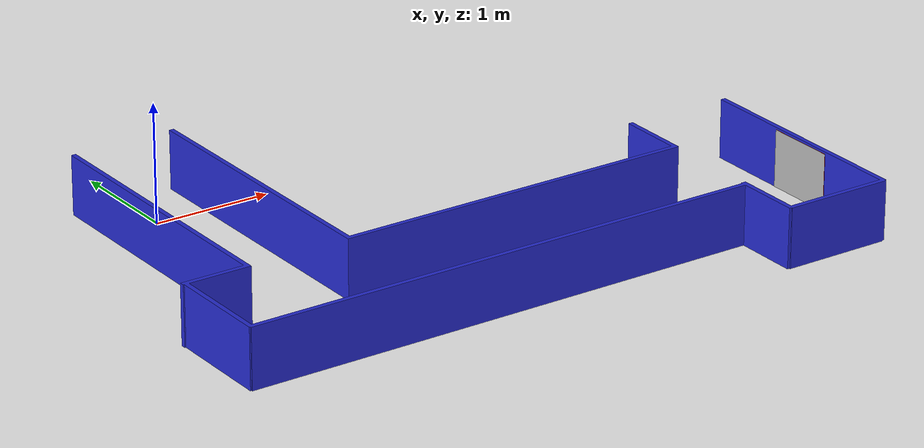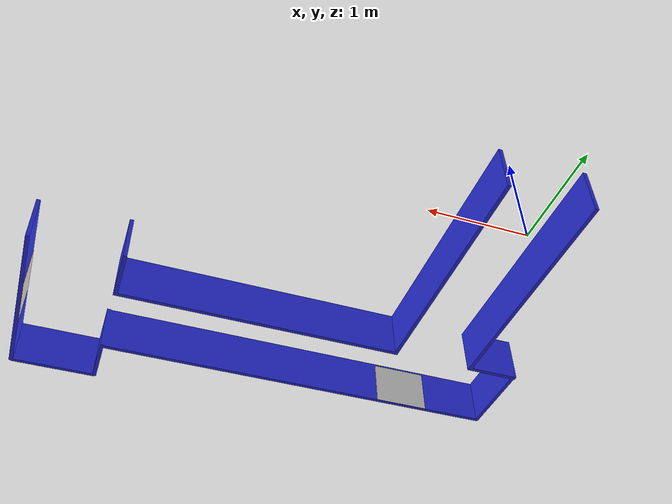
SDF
<?xml version='1.0'?>
<sdf version='1.7'>
  <model name='qr_maze'>
    <link name='link_0'>
      <inertial>
        <mass>1</mass>
        <inertia>
          <ixx>0.166667</ixx>
          <ixy>0</ixy>
          <ixz>0</ixz>
          <iyy>0.166667</iyy>
          <iyz>0</iyz>
          <izz>0.166667</izz>
        </inertia>
        <pose>0 0 0 0 -0 0</pose>
      </inertial>
      <pose>-0.003152 0.004438 -0.000445 0 -0 0</pose>
      <gravity>1</gravity>
      <self_collide>0</self_collide>
      <kinematic>0</kinematic>
      <enable_wind>0</enable_wind>
      <visual name='visual'>
        <pose>0 0 0 0 -0 0</pose>
        <geometry>
          <mesh>
            <uri>/home/luqman/ros2_ws/src/ROS2-Raspberry-PI-Computer-Vision-Robot/vision_bot/meshes/qr_maze.dae</uri>
            <scale>1 1 1</scale>
          </mesh>
        </geometry>

        <transparency>0</transparency>
        <cast_shadows>1</cast_shadows>
      </visual>
      <collision name='collision'>
        <laser_retro>0</laser_retro>
        <max_contacts>10</max_contacts>
        <pose>0 0 0 0 -0 0</pose>
        <geometry>
          <mesh>
            <uri>/home/luqman/ros2_ws/src/ROS2-Raspberry-PI-Computer-Vision-Robot/vision_bot/meshes/qr_maze.dae</uri>
            <scale>1 1 1</scale>
          </mesh>
        </geometry>
        <surface>
          <friction>
            <ode>
              <mu>1</mu>
              <mu2>1</mu2>
              <fdir1>0 0 0</fdir1>
              <slip1>0</slip1>
              <slip2>0</slip2>
            </ode>
            <torsional>
              <coefficient>1</coefficient>
              <patch_radius>0</patch_radius>
              <surface_radius>0</surface_radius>
              <use_patch_radius>1</use_patch_radius>
              <ode>
                <slip>0</slip>
              </ode>
            </torsional>
          </friction>
          <bounce>
            <restitution_coefficient>0</restitution_coefficient>
            <threshold>1e+06</threshold>
          </bounce>
          <contact>
            <collide_without_contact>0</collide_without_contact>
            <collide_without_contact_bitmask>1</collide_without_contact_bitmask>
            <collide_bitmask>1</collide_bitmask>
            <ode>
              <soft_cfm>0</soft_cfm>
              <soft_erp>0.2</soft_erp>
              <kp>1e+13</kp>
              <kd>1</kd>
              <max_vel>0.01</max_vel>
              <min_depth>0</min_depth>
            </ode>
            <bullet>
              <split_impulse>1</split_impulse>
              <split_impulse_penetration_threshold>-0.01</split_impulse_penetration_threshold>
              <soft_cfm>0</soft_cfm>
              <soft_erp>0.2</soft_erp>
              <kp>1e+13</kp>
              <kd>1</kd>
            </bullet>
          </contact>
        </surface>
      </collision>
    </link>
    <link name='link_1'>
      <inertial>
        <mass>1</mass>
        <inertia>
          <ixx>0.166667</ixx>
          <ixy>0</ixy>
          <ixz>0</ixz>
          <iyy>0.166667</iyy>
          <iyz>0</iyz>
          <izz>0.166667</izz>
        </inertia>
      </inertial>
      <pose>0.003152 -0.004437 0.000445 0 -0 0</pose>
      <visual name='visual'>
        <pose>0 0 0 0 -0 0</pose>
        <geometry>
          <mesh>
            <uri>/home/luqman/ros2_ws/src/ROS2-Raspberry-PI-Computer-Vision-Robot/vision_bot/meshes/qr_code.dae</uri>
            <scale>1 1 1</scale>
          </mesh>
        </geometry>

        <transparency>0</transparency>
        <cast_shadows>1</cast_shadows>
      </visual>
      <collision name='collision'>
        <laser_retro>0</laser_retro>
        <max_contacts>10</max_contacts>
        <pose>0 0 0 0 -0 0</pose>
        <geometry>
          <mesh>
            <uri>/home/luqman/ros2_ws/src/ROS2-Raspberry-PI-Computer-Vision-Robot/vision_bot/meshes/qr_code.dae</uri>
            <scale>1 1 1</scale>
          </mesh>
        </geometry>
        <surface>
          <friction>
            <ode>
              <mu>1</mu>
              <mu2>1</mu2>
              <fdir1>0 0 0</fdir1>
              <slip1>0</slip1>
              <slip2>0</slip2>
            </ode>
            <torsional>
              <coefficient>1</coefficient>
              <patch_radius>0</patch_radius>
              <surface_radius>0</surface_radius>
              <use_patch_radius>1</use_patch_radius>
              <ode>
                <slip>0</slip>
              </ode>
            </torsional>
          </friction>
          <bounce>
            <restitution_coefficient>0</restitution_coefficient>
            <threshold>1e+06</threshold>
          </bounce>
          <contact>
            <collide_without_contact>0</collide_without_contact>
            <collide_without_contact_bitmask>1</collide_without_contact_bitmask>
            <collide_bitmask>1</collide_bitmask>
            <ode>
              <soft_cfm>0</soft_cfm>
              <soft_erp>0.2</soft_erp>
              <kp>1e+13</kp>
              <kd>1</kd>
              <max_vel>0.01</max_vel>
              <min_depth>0</min_depth>
            </ode>
            <bullet>
              <split_impulse>1</split_impulse>
              <split_impulse_penetration_threshold>-0.01</split_impulse_penetration_threshold>
              <soft_cfm>0</soft_cfm>
              <soft_erp>0.2</soft_erp>
              <kp>1e+13</kp>
              <kd>1</kd>
            </bullet>
          </contact>
        </surface>
      </collision>
    </link>
    <static>1</static>
    <allow_auto_disable>1</allow_auto_disable>
  </model>
</sdf>
